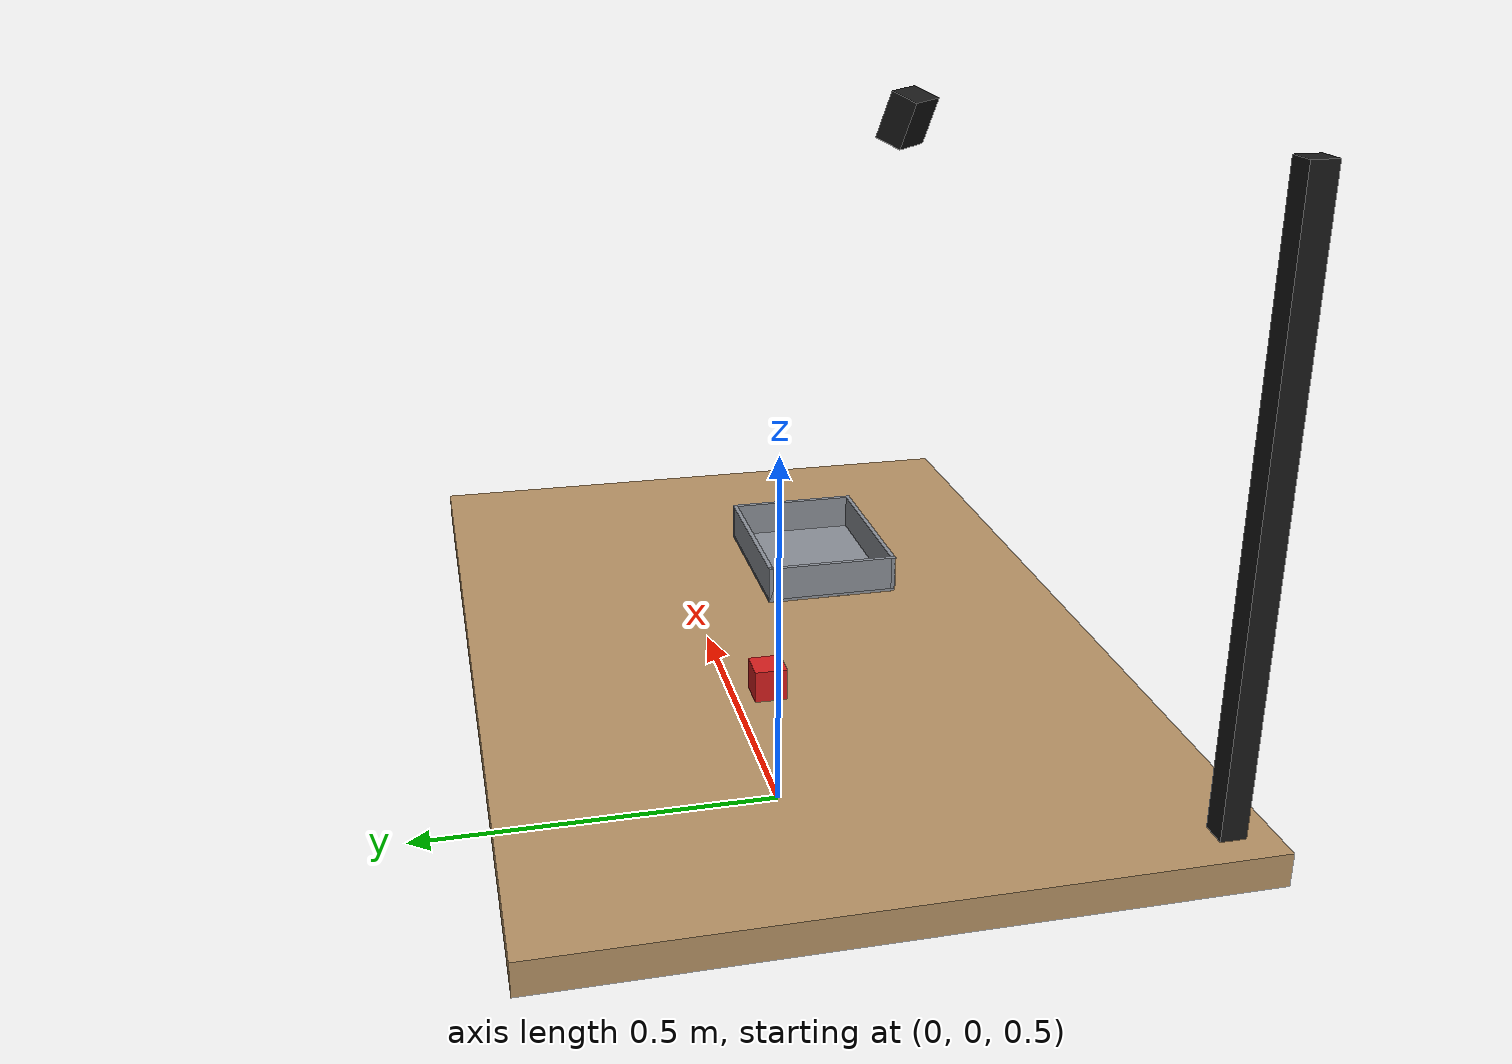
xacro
<?xml version="1.0"?>
<robot xmlns:xacro="http://www.ros.org/wiki/xacro" name="workbench">

  <!-- ============================================================ params -->
  <xacro:property name="table_x"      value="1.20"/>
  <xacro:property name="table_y"      value="0.80"/>
  <xacro:property name="table_thick"  value="0.04"/>
  <xacro:property name="table_height" value="0.75"/>

  <!-- Tray is five parts so the interior is a real volume. A flat plate has no
       cavity, and containment cannot be decided against a plate. -->
  <xacro:property name="tray_x"       value="0.24"/>
  <xacro:property name="tray_y"       value="0.18"/>
  <xacro:property name="tray_wall"    value="0.006"/>
  <xacro:property name="tray_depth"   value="0.05"/>
  <xacro:property name="tray_floor"   value="0.004"/>

  <xacro:property name="module_size"  value="0.040"/>
  <xacro:property name="module_mass"  value="0.050"/>

  <xacro:property name="cam_height"   value="0.70"/>

  <!-- ========================================================== materials -->
  <material name="wood">    <color rgba="0.72 0.58 0.40 1.0"/></material>
  <material name="grey">    <color rgba="0.55 0.57 0.60 1.0"/></material>
  <material name="red">     <color rgba="0.85 0.12 0.12 1.0"/></material>
  <material name="black">   <color rgba="0.10 0.10 0.10 1.0"/></material>

  <!-- ============================================================= macros -->
  <!-- Inertia for a solid box. Written out rather than approximated: a wrong
       inertia tensor makes contact behaviour subtly wrong, and then physics
       tuning chases the wrong parameter. -->
  <xacro:macro name="box_inertia" params="m x y z">
    <inertial>
      <mass value="${m}"/>
      <inertia
        ixx="${m * (y*y + z*z) / 12.0}" ixy="0.0" ixz="0.0"
        iyy="${m * (x*x + z*z) / 12.0}" iyz="0.0"
        izz="${m * (x*x + y*y) / 12.0}"/>
    </inertial>
  </xacro:macro>

  <xacro:macro name="static_box" params="name x y z mat">
    <link name="${name}">
      <visual>
        <geometry><box size="${x} ${y} ${z}"/></geometry>
        <material name="${mat}"/>
      </visual>
      <collision>
        <geometry><box size="${x} ${y} ${z}"/></geometry>
      </collision>
      <xacro:box_inertia m="1.0" x="${x}" y="${y}" z="${z}"/>
    </link>
  </xacro:macro>

  <!-- ============================================================== world -->
  <link name="world"/>

  <!-- ============================================================== table -->
  <xacro:static_box name="table" x="${table_x}" y="${table_y}"
                    z="${table_thick}" mat="wood"/>

  <joint name="world_to_table" type="fixed">
    <parent link="world"/>
    <child  link="table"/>
    <!-- Origin at the slab centre, so the top surface lands at table_height -->
    <origin xyz="0 0 ${table_height - table_thick/2}" rpy="0 0 0"/>
  </joint>

  <!-- Named frame at the working plane. Scenario poses are expressed relative
       to this, so changing table_thick does not move every object. -->
  <link name="table_surface"/>
  <joint name="table_to_surface" type="fixed">
    <parent link="table"/>
    <child  link="table_surface"/>
    <origin xyz="0 0 ${table_thick/2}" rpy="0 0 0"/>
  </joint>

  <!-- =============================================================== tray -->
  <link name="tray_base"/>
  <joint name="surface_to_tray" type="fixed">
    <parent link="table_surface"/>
    <child  link="tray_base"/>
    <!-- Operator's right, clear of the arm's home position -->
    <origin xyz="0.22 -0.10 0" rpy="0 0 0"/>
  </joint>

  <!-- floor -->
  <xacro:static_box name="tray_floor" x="${tray_x}" y="${tray_y}"
                    z="${tray_floor}" mat="grey"/>
  <joint name="tray_base_to_floor" type="fixed">
    <parent link="tray_base"/>
    <child  link="tray_floor"/>
    <origin xyz="0 0 ${tray_floor/2}" rpy="0 0 0"/>
  </joint>

  <!-- four walls -->
  <xacro:static_box name="tray_wall_xp" x="${tray_wall}" y="${tray_y}"
                    z="${tray_depth}" mat="grey"/>
  <joint name="tray_base_to_wall_xp" type="fixed">
    <parent link="tray_base"/>
    <child  link="tray_wall_xp"/>
    <origin xyz="${ tray_x/2 - tray_wall/2} 0 ${tray_depth/2}" rpy="0 0 0"/>
  </joint>

  <xacro:static_box name="tray_wall_xn" x="${tray_wall}" y="${tray_y}"
                    z="${tray_depth}" mat="grey"/>
  <joint name="tray_base_to_wall_xn" type="fixed">
    <parent link="tray_base"/>
    <child  link="tray_wall_xn"/>
    <origin xyz="${-tray_x/2 + tray_wall/2} 0 ${tray_depth/2}" rpy="0 0 0"/>
  </joint>

  <xacro:static_box name="tray_wall_yp" x="${tray_x}" y="${tray_wall}"
                    z="${tray_depth}" mat="grey"/>
  <joint name="tray_base_to_wall_yp" type="fixed">
    <parent link="tray_base"/>
    <child  link="tray_wall_yp"/>
    <origin xyz="0 ${ tray_y/2 - tray_wall/2} ${tray_depth/2}" rpy="0 0 0"/>
  </joint>

  <xacro:static_box name="tray_wall_yn" x="${tray_x}" y="${tray_wall}"
                    z="${tray_depth}" mat="grey"/>
  <joint name="tray_base_to_wall_yn" type="fixed">
    <parent link="tray_base"/>
    <child  link="tray_wall_yn"/>
    <origin xyz="0 ${-tray_y/2 + tray_wall/2} ${tray_depth/2}" rpy="0 0 0"/>
  </joint>

  <link name="tray_cavity"/>
  <joint name="tray_base_to_cavity" type="fixed">
    <parent link="tray_base"/>
    <child  link="tray_cavity"/>
    <origin xyz="0 0 ${tray_floor + (tray_depth - tray_floor)/2}" rpy="0 0 0"/>
  </joint>

  <!-- ============================================================= module -->
  <!-- Free body. Its pose comes from the scenario manifest, seeded per run, so
       the same seed rebuilds the same scene. -->
  <link name="module_red">
    <visual>
      <geometry><box size="${module_size} ${module_size} ${module_size}"/></geometry>
      <material name="red"/>
    </visual>
    <collision>
      <geometry><box size="${module_size} ${module_size} ${module_size}"/></geometry>
    </collision>
    <xacro:box_inertia m="${module_mass}" x="${module_size}"
                       y="${module_size}" z="${module_size}"/>
  </link>

  <joint name="surface_to_module" type="fixed">
    <parent link="table_surface"/>
    <child  link="module_red"/>
    <origin xyz="-0.15 0.05 ${module_size/2}" rpy="0 0 0"/>
  </joint>

  <!-- ============================================================= camera -->
  <xacro:static_box name="camera_post" x="0.03" y="0.03"
                    z="${cam_height}" mat="black"/>
  <joint name="surface_to_post" type="fixed">
    <parent link="table_surface"/>
    <child  link="camera_post"/>
    <origin xyz="${-table_x/2 + 0.05} ${-table_y/2 + 0.05} ${cam_height/2}"
            rpy="0 0 0"/>
  </joint>

  <xacro:property name="camera_body_size" value="0.05 0.05 0.03"/>

  <link name="camera_body">
    <visual>
      <geometry><box size="${camera_body_size}"/></geometry>
      <material name="black"/>
    </visual>
    <collision>
      <geometry><box size="${camera_body_size}"/></geometry>
    </collision>
    <xacro:box_inertia m="0.1" x="0.05" y="0.05" z="0.03"/>
  </link>

  <!-- Looking down at the table. Positioned to see the module's start region
       and the tray at once. -->
  <joint name="post_to_camera" type="fixed">
    <parent link="camera_post"/>
    <child  link="camera_body"/>
    <origin xyz="0.30 0.28 ${cam_height/2}" rpy="0 ${radians(70)} ${radians(45)}"/>
  </joint>

  <link name="camera_optical"/>
  <joint name="camera_body_to_optical" type="fixed">
    <parent link="camera_body"/>
    <child  link="camera_optical"/>
    <origin xyz="0 0 0" rpy="${radians(-90)} 0 ${radians(-90)}"/>
  </joint>

  <!-- ======================================================= gazebo bits -->
  <!-- Friction on the module and the tray floor. These are the numbers physics
       tuning actually moves; they start at plausible values for plastic on
       plastic and are expected to change. -->
  <gazebo reference="module_red">
    <mu1>0.8</mu1>
    <mu2>0.8</mu2>
    <kp>1e6</kp>
    <kd>1.0</kd>
  </gazebo>

  <gazebo reference="tray_floor">
    <mu1>0.6</mu1>
    <mu2>0.6</mu2>
  </gazebo>

  <gazebo reference="table">
    <mu1>0.7</mu1>
    <mu2>0.7</mu2>
  </gazebo>

  <gazebo reference="camera_body">
    <sensor name="workbench_camera" type="camera">
      <pose relative_to="camera_optical">0 0 0 0 0 0</pose>
      <camera>
        <horizontal_fov>1.047</horizontal_fov>
        <!-- 640x480 is what tag detection wants. Larger frames cost simulation
             time without improving marker recovery at this working distance. -->
        <image><width>640</width><height>480</height><format>R8G8B8</format></image>
        <clip><near>0.05</near><far>3.0</far></clip>
        <noise>
          <type>gaussian</type>
          <mean>0.0</mean>
          <!-- Non-zero on purpose. A noiseless camera lets perception pass with
               thresholds that would fail on real hardware. -->
          <stddev>0.007</stddev>
        </noise>
      </camera>
      <always_on>1</always_on>
      <update_rate>30</update_rate>
      <visualize>true</visualize>
      <topic>/workbench/camera/image_raw</topic>
    </sensor>
  </gazebo>

</robot>
